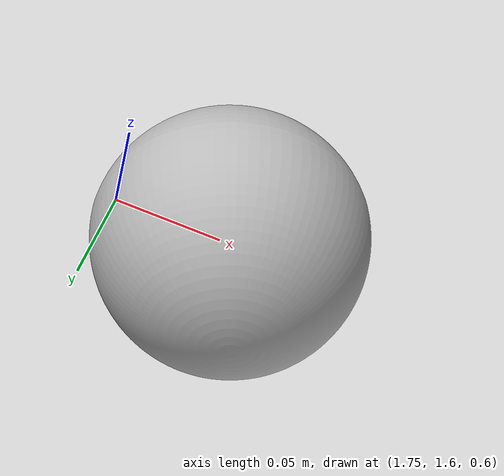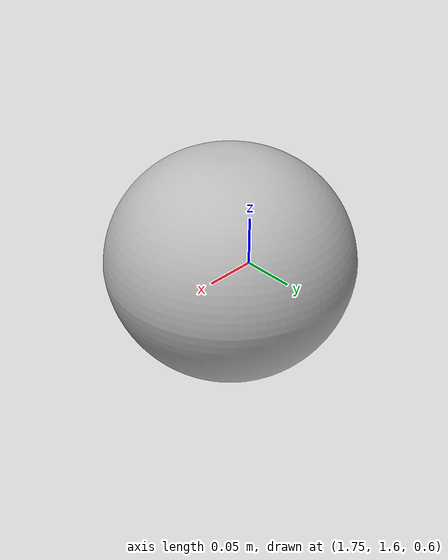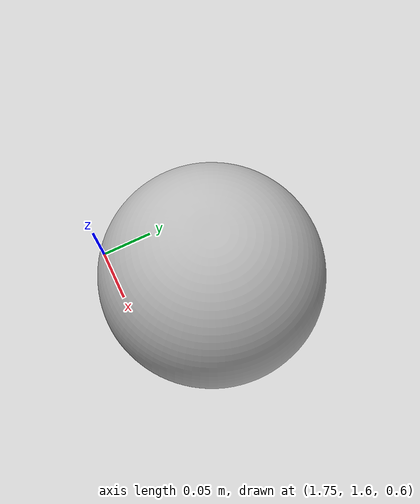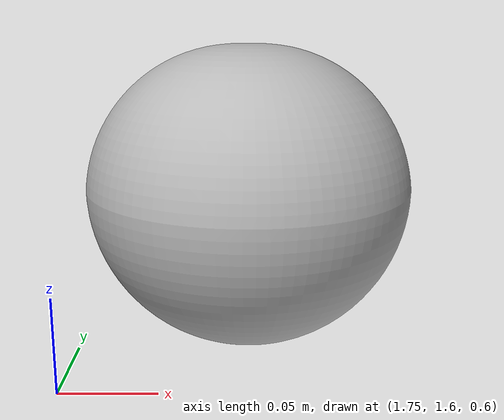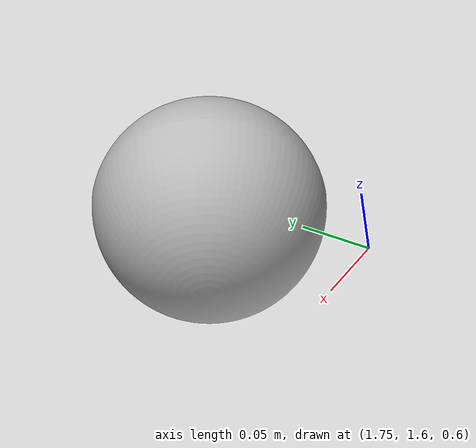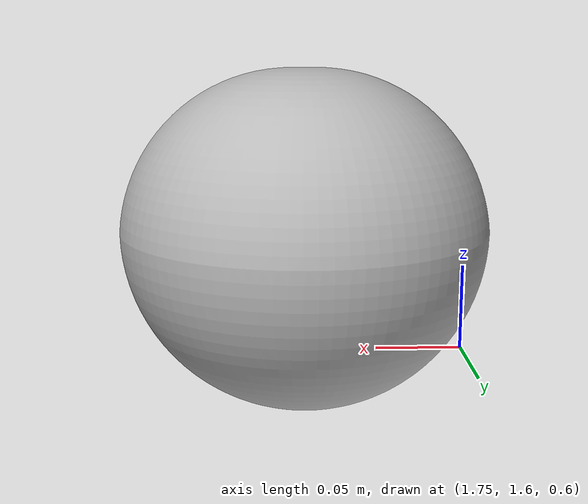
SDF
<?xml version="1.0" ?>
<sdf version="1.6">
  <model name="DiscoBall">
    <link name="link">
      <inertial>
        <mass>50</mass>
      </inertial>
      <collision name="collision">
        <geometry>
          <mesh>
            <uri>file://models/DiscoBall/meshes/DiscoBall.dae</uri>
            <scale>1 1 1</scale>
          </mesh>
        </geometry>
      </collision>
      <visual name="visual">
	    <geometry>
          <mesh>
            <uri>file://models/DiscoBall/meshes/DiscoBall.dae</uri>
          </mesh>
        </geometry>
        <meta>
          <layer>3</layer>
        </meta>
      </visual>
    </link>
    <static>1</static>
  </model>
</sdf>
